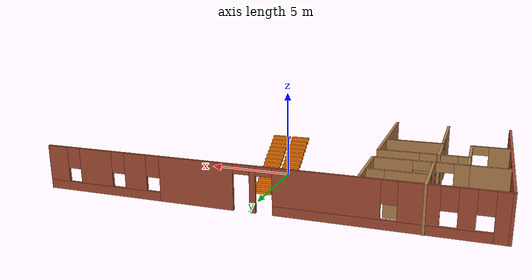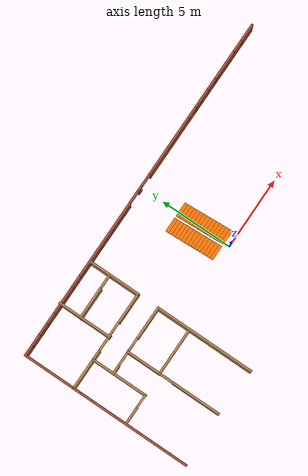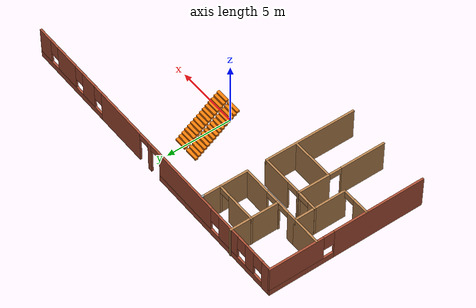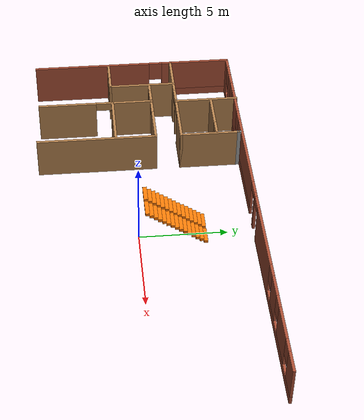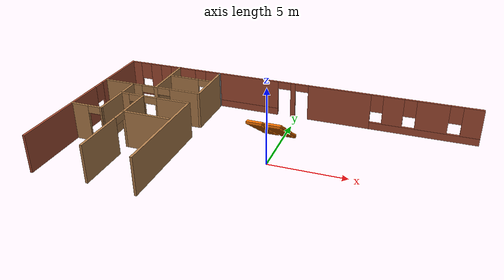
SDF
<sdf version="1.6">
 <model name="myhouse">
  <pose>-0.386417 0.578117 0 0 -0 0</pose>
  <link name="Stairs_1">
   <visual name="Stairs_1_Visual_0">
    <pose>0.612913 3.12759 0.083333 0 -0 0</pose>
    <geometry><box><size>1 0.233333 0.166667</size></box></geometry>
    <material>
     <script><uri>file://media/materials/scripts/gazebo.material</uri><name>Gazebo/Grey</name></script>
     <ambient>0.996078 0.47451 0.0196078 1</ambient>
    </material>
   </visual>
   <collision name="Stairs_1_Collision_0">
    <geometry><box><size>1 0.233333 0.166667</size></box></geometry>
    <pose>0.612913 3.12759 0.083333 0 -0 0</pose>
   </collision>
   <visual name="Stairs_1_Visual_1">
    <pose>0.612913 2.89426 0.25 0 -0 0</pose>
    <geometry><box><size>1 0.233333 0.166667</size></box></geometry>
    <material>
     <script><uri>file://media/materials/scripts/gazebo.material</uri><name>Gazebo/Grey</name></script>
     <ambient>0.996078 0.47451 0.0196078 1</ambient>
    </material>
   </visual>
   <collision name="Stairs_1_Collision_1">
    <geometry><box><size>1 0.233333 0.166667</size></box></geometry>
    <pose>0.612913 2.89426 0.25 0 -0 0</pose>
   </collision>
   <visual name="Stairs_1_Visual_2">
    <pose>0.612913 2.66093 0.416667 0 -0 0</pose>
    <geometry><box><size>1 0.233333 0.166667</size></box></geometry>
    <material>
     <script><uri>file://media/materials/scripts/gazebo.material</uri><name>Gazebo/Grey</name></script>
     <ambient>0.996078 0.47451 0.0196078 1</ambient>
    </material>
   </visual>
   <collision name="Stairs_1_Collision_2">
    <geometry><box><size>1 0.233333 0.166667</size></box></geometry>
    <pose>0.612913 2.66093 0.416667 0 -0 0</pose>
   </collision>
   <visual name="Stairs_1_Visual_3">
    <pose>0.612913 2.4276 0.583333 0 -0 0</pose>
    <geometry><box><size>1 0.233333 0.166667</size></box></geometry>
    <material>
     <script><uri>file://media/materials/scripts/gazebo.material</uri><name>Gazebo/Grey</name></script>
     <ambient>0.996078 0.47451 0.0196078 1</ambient>
    </material>
   </visual>
   <collision name="Stairs_1_Collision_3">
    <geometry><box><size>1 0.233333 0.166667</size></box></geometry>
    <pose>0.612913 2.4276 0.583333 0 -0 0</pose>
   </collision>
   <visual name="Stairs_1_Visual_4">
    <pose>0.612913 2.19426 0.75 0 -0 0</pose>
    <geometry><box><size>1 0.233333 0.166667</size></box></geometry>
    <material>
     <script><uri>file://media/materials/scripts/gazebo.material</uri><name>Gazebo/Grey</name></script>
     <ambient>0.996078 0.47451 0.0196078 1</ambient>
    </material>
   </visual>
   <collision name="Stairs_1_Collision_4">
    <geometry><box><size>1 0.233333 0.166667</size></box></geometry>
    <pose>0.612913 2.19426 0.75 0 -0 0</pose>
   </collision>
   <visual name="Stairs_1_Visual_5">
    <pose>0.612913 1.96093 0.916667 0 -0 0</pose>
    <geometry><box><size>1 0.233333 0.166667</size></box></geometry>
    <material>
     <script><uri>file://media/materials/scripts/gazebo.material</uri><name>Gazebo/Grey</name></script>
     <ambient>0.996078 0.47451 0.0196078 1</ambient>
    </material>
   </visual>
   <collision name="Stairs_1_Collision_5">
    <geometry><box><size>1 0.233333 0.166667</size></box></geometry>
    <pose>0.612913 1.96093 0.916667 0 -0 0</pose>
   </collision>
   <visual name="Stairs_1_Visual_6">
    <pose>0.612913 1.72759 1.08333 0 -0 0</pose>
    <geometry><box><size>1 0.233333 0.166667</size></box></geometry>
    <material>
     <script><uri>file://media/materials/scripts/gazebo.material</uri><name>Gazebo/Grey</name></script>
     <ambient>0.996078 0.47451 0.0196078 1</ambient>
    </material>
   </visual>
   <collision name="Stairs_1_Collision_6">
    <geometry><box><size>1 0.233333 0.166667</size></box></geometry>
    <pose>0.612913 1.72759 1.08333 0 -0 0</pose>
   </collision>
   <visual name="Stairs_1_Visual_7">
    <pose>0.612913 1.49426 1.25 0 -0 0</pose>
    <geometry><box><size>1 0.233333 0.166667</size></box></geometry>
    <material>
     <script><uri>file://media/materials/scripts/gazebo.material</uri><name>Gazebo/Grey</name></script>
     <ambient>0.996078 0.47451 0.0196078 1</ambient>
    </material>
   </visual>
   <collision name="Stairs_1_Collision_7">
    <geometry><box><size>1 0.233333 0.166667</size></box></geometry>
    <pose>0.612913 1.49426 1.25 0 -0 0</pose>
   </collision>
   <visual name="Stairs_1_Visual_8">
    <pose>0.612913 1.26093 1.41667 0 -0 0</pose>
    <geometry><box><size>1 0.233333 0.166667</size></box></geometry>
    <material>
     <script><uri>file://media/materials/scripts/gazebo.material</uri><name>Gazebo/Grey</name></script>
     <ambient>0.996078 0.47451 0.0196078 1</ambient>
    </material>
   </visual>
   <collision name="Stairs_1_Collision_8">
    <geometry><box><size>1 0.233333 0.166667</size></box></geometry>
    <pose>0.612913 1.26093 1.41667 0 -0 0</pose>
   </collision>
   <visual name="Stairs_1_Visual_9">
    <pose>0.612913 1.0276 1.58333 0 -0 0</pose>
    <geometry><box><size>1 0.233333 0.166667</size></box></geometry>
    <material>
     <script><uri>file://media/materials/scripts/gazebo.material</uri><name>Gazebo/Grey</name></script>
     <ambient>0.996078 0.47451 0.0196078 1</ambient>
    </material>
   </visual>
   <collision name="Stairs_1_Collision_9">
    <geometry><box><size>1 0.233333 0.166667</size></box></geometry>
    <pose>0.612913 1.0276 1.58333 0 -0 0</pose>
   </collision>
   <visual name="Stairs_1_Visual_10">
    <pose>0.612913 0.794262 1.75 0 -0 0</pose>
    <geometry><box><size>1 0.233333 0.166667</size></box></geometry>
    <material>
     <script><uri>file://media/materials/scripts/gazebo.material</uri><name>Gazebo/Grey</name></script>
     <ambient>0.996078 0.47451 0.0196078 1</ambient>
    </material>
   </visual>
   <collision name="Stairs_1_Collision_10">
    <geometry><box><size>1 0.233333 0.166667</size></box></geometry>
    <pose>0.612913 0.794262 1.75 0 -0 0</pose>
   </collision>
   <visual name="Stairs_1_Visual_11">
    <pose>0.612913 0.560929 1.91667 0 -0 0</pose>
    <geometry><box><size>1 0.233333 0.166667</size></box></geometry>
    <material>
     <script><uri>file://media/materials/scripts/gazebo.material</uri><name>Gazebo/Grey</name></script>
     <ambient>0.996078 0.47451 0.0196078 1</ambient>
    </material>
   </visual>
   <collision name="Stairs_1_Collision_11">
    <geometry><box><size>1 0.233333 0.166667</size></box></geometry>
    <pose>0.612913 0.560929 1.91667 0 -0 0</pose>
   </collision>
   <visual name="Stairs_1_Visual_12">
    <pose>0.612913 0.327595 2.08333 0 -0 0</pose>
    <geometry><box><size>1 0.233333 0.166667</size></box></geometry>
    <material>
     <script><uri>file://media/materials/scripts/gazebo.material</uri><name>Gazebo/Grey</name></script>
     <ambient>0.996078 0.47451 0.0196078 1</ambient>
    </material>
   </visual>
   <collision name="Stairs_1_Collision_12">
    <geometry><box><size>1 0.233333 0.166667</size></box></geometry>
    <pose>0.612913 0.327595 2.08333 0 -0 0</pose>
   </collision>
   <visual name="Stairs_1_Visual_13">
    <pose>0.612913 0.094262 2.25 0 -0 0</pose>
    <geometry><box><size>1 0.233333 0.166667</size></box></geometry>
    <material>
     <script><uri>file://media/materials/scripts/gazebo.material</uri><name>Gazebo/Grey</name></script>
     <ambient>0.996078 0.47451 0.0196078 1</ambient>
    </material>
   </visual>
   <collision name="Stairs_1_Collision_13">
    <geometry><box><size>1 0.233333 0.166667</size></box></geometry>
    <pose>0.612913 0.094262 2.25 0 -0 0</pose>
   </collision>
   <visual name="Stairs_1_Visual_14">
    <pose>0.612913 -0.139071 2.41667 0 -0 0</pose>
    <geometry><box><size>1 0.233333 0.166667</size></box></geometry>
    <material>
     <script><uri>file://media/materials/scripts/gazebo.material</uri><name>Gazebo/Grey</name></script>
     <ambient>0.996078 0.47451 0.0196078 1</ambient>
    </material>
   </visual>
   <collision name="Stairs_1_Collision_14">
    <geometry><box><size>1 0.233333 0.166667</size></box></geometry>
    <pose>0.612913 -0.139071 2.41667 0 -0 0</pose>
   </collision>
  </link>
  <link name="Stairs_2">
   <visual name="Stairs_2_Visual_0">
    <pose>-0.53356 3.12759 0.083333 0 -0 0</pose>
    <geometry><box><size>1 0.233333 0.166667</size></box></geometry>
    <material>
     <script><uri>file://media/materials/scripts/gazebo.material</uri><name>Gazebo/Grey</name></script>
     <ambient>0.996078 0.47451 0.0196078 1</ambient>
    </material>
   </visual>
   <collision name="Stairs_2_Collision_0">
    <geometry><box><size>1 0.233333 0.166667</size></box></geometry>
    <pose>-0.53356 3.12759 0.083333 0 -0 0</pose>
   </collision>
   <visual name="Stairs_2_Visual_1">
    <pose>-0.53356 2.89426 0.25 0 -0 0</pose>
    <geometry><box><size>1 0.233333 0.166667</size></box></geometry>
    <material>
     <script><uri>file://media/materials/scripts/gazebo.material</uri><name>Gazebo/Grey</name></script>
     <ambient>0.996078 0.47451 0.0196078 1</ambient>
    </material>
   </visual>
   <collision name="Stairs_2_Collision_1">
    <geometry><box><size>1 0.233333 0.166667</size></box></geometry>
    <pose>-0.53356 2.89426 0.25 0 -0 0</pose>
   </collision>
   <visual name="Stairs_2_Visual_2">
    <pose>-0.53356 2.66093 0.416667 0 -0 0</pose>
    <geometry><box><size>1 0.233333 0.166667</size></box></geometry>
    <material>
     <script><uri>file://media/materials/scripts/gazebo.material</uri><name>Gazebo/Grey</name></script>
     <ambient>0.996078 0.47451 0.0196078 1</ambient>
    </material>
   </visual>
   <collision name="Stairs_2_Collision_2">
    <geometry><box><size>1 0.233333 0.166667</size></box></geometry>
    <pose>-0.53356 2.66093 0.416667 0 -0 0</pose>
   </collision>
   <visual name="Stairs_2_Visual_3">
    <pose>-0.53356 2.4276 0.583333 0 -0 0</pose>
    <geometry><box><size>1 0.233333 0.166667</size></box></geometry>
    <material>
     <script><uri>file://media/materials/scripts/gazebo.material</uri><name>Gazebo/Grey</name></script>
     <ambient>0.996078 0.47451 0.0196078 1</ambient>
    </material>
   </visual>
   <collision name="Stairs_2_Collision_3">
    <geometry><box><size>1 0.233333 0.166667</size></box></geometry>
    <pose>-0.53356 2.4276 0.583333 0 -0 0</pose>
   </collision>
   <visual name="Stairs_2_Visual_4">
    <pose>-0.53356 2.19426 0.75 0 -0 0</pose>
    <geometry><box><size>1 0.233333 0.166667</size></box></geometry>
    <material>
     <script><uri>file://media/materials/scripts/gazebo.material</uri><name>Gazebo/Grey</name></script>
     <ambient>0.996078 0.47451 0.0196078 1</ambient>
    </material>
   </visual>
   <collision name="Stairs_2_Collision_4">
    <geometry><box><size>1 0.233333 0.166667</size></box></geometry>
    <pose>-0.53356 2.19426 0.75 0 -0 0</pose>
   </collision>
   <visual name="Stairs_2_Visual_5">
    <pose>-0.53356 1.96093 0.916667 0 -0 0</pose>
    <geometry><box><size>1 0.233333 0.166667</size></box></geometry>
    <material>
     <script><uri>file://media/materials/scripts/gazebo.material</uri><name>Gazebo/Grey</name></script>
     <ambient>0.996078 0.47451 0.0196078 1</ambient>
    </material>
   </visual>
   <collision name="Stairs_2_Collision_5">
    <geometry><box><size>1 0.233333 0.166667</size></box></geometry>
    <pose>-0.53356 1.96093 0.916667 0 -0 0</pose>
   </collision>
   <visual name="Stairs_2_Visual_6">
    <pose>-0.53356 1.72759 1.08333 0 -0 0</pose>
    <geometry><box><size>1 0.233333 0.166667</size></box></geometry>
    <material>
     <script><uri>file://media/materials/scripts/gazebo.material</uri><name>Gazebo/Grey</name></script>
     <ambient>0.996078 0.47451 0.0196078 1</ambient>
    </material>
   </visual>
   <collision name="Stairs_2_Collision_6">
    <geometry><box><size>1 0.233333 0.166667</size></box></geometry>
    <pose>-0.53356 1.72759 1.08333 0 -0 0</pose>
   </collision>
   <visual name="Stairs_2_Visual_7">
    <pose>-0.53356 1.49426 1.25 0 -0 0</pose>
    <geometry><box><size>1 0.233333 0.166667</size></box></geometry>
    <material>
     <script><uri>file://media/materials/scripts/gazebo.material</uri><name>Gazebo/Grey</name></script>
     <ambient>0.996078 0.47451 0.0196078 1</ambient>
    </material>
   </visual>
   <collision name="Stairs_2_Collision_7">
    <geometry><box><size>1 0.233333 0.166667</size></box></geometry>
    <pose>-0.53356 1.49426 1.25 0 -0 0</pose>
   </collision>
   <visual name="Stairs_2_Visual_8">
    <pose>-0.53356 1.26093 1.41667 0 -0 0</pose>
    <geometry><box><size>1 0.233333 0.166667</size></box></geometry>
    <material>
     <script><uri>file://media/materials/scripts/gazebo.material</uri><name>Gazebo/Grey</name></script>
     <ambient>0.996078 0.47451 0.0196078 1</ambient>
    </material>
   </visual>
   <collision name="Stairs_2_Collision_8">
    <geometry><box><size>1 0.233333 0.166667</size></box></geometry>
    <pose>-0.53356 1.26093 1.41667 0 -0 0</pose>
   </collision>
   <visual name="Stairs_2_Visual_9">
    <pose>-0.53356 1.0276 1.58333 0 -0 0</pose>
    <geometry><box><size>1 0.233333 0.166667</size></box></geometry>
    <material>
     <script><uri>file://media/materials/scripts/gazebo.material</uri><name>Gazebo/Grey</name></script>
     <ambient>0.996078 0.47451 0.0196078 1</ambient>
    </material>
   </visual>
   <collision name="Stairs_2_Collision_9">
    <geometry><box><size>1 0.233333 0.166667</size></box></geometry>
    <pose>-0.53356 1.0276 1.58333 0 -0 0</pose>
   </collision>
   <visual name="Stairs_2_Visual_10">
    <pose>-0.53356 0.794262 1.75 0 -0 0</pose>
    <geometry><box><size>1 0.233333 0.166667</size></box></geometry>
    <material>
     <script><uri>file://media/materials/scripts/gazebo.material</uri><name>Gazebo/Grey</name></script>
     <ambient>0.996078 0.47451 0.0196078 1</ambient>
    </material>
   </visual>
   <collision name="Stairs_2_Collision_10">
    <geometry><box><size>1 0.233333 0.166667</size></box></geometry>
    <pose>-0.53356 0.794262 1.75 0 -0 0</pose>
   </collision>
   <visual name="Stairs_2_Visual_11">
    <pose>-0.53356 0.560929 1.91667 0 -0 0</pose>
    <geometry><box><size>1 0.233333 0.166667</size></box></geometry>
    <material>
     <script><uri>file://media/materials/scripts/gazebo.material</uri><name>Gazebo/Grey</name></script>
     <ambient>0.996078 0.47451 0.0196078 1</ambient>
    </material>
   </visual>
   <collision name="Stairs_2_Collision_11">
    <geometry><box><size>1 0.233333 0.166667</size></box></geometry>
    <pose>-0.53356 0.560929 1.91667 0 -0 0</pose>
   </collision>
   <visual name="Stairs_2_Visual_12">
    <pose>-0.53356 0.327595 2.08333 0 -0 0</pose>
    <geometry><box><size>1 0.233333 0.166667</size></box></geometry>
    <material>
     <script><uri>file://media/materials/scripts/gazebo.material</uri><name>Gazebo/Grey</name></script>
     <ambient>0.996078 0.47451 0.0196078 1</ambient>
    </material>
   </visual>
   <collision name="Stairs_2_Collision_12">
    <geometry><box><size>1 0.233333 0.166667</size></box></geometry>
    <pose>-0.53356 0.327595 2.08333 0 -0 0</pose>
   </collision>
   <visual name="Stairs_2_Visual_13">
    <pose>-0.53356 0.094262 2.25 0 -0 0</pose>
    <geometry><box><size>1 0.233333 0.166667</size></box></geometry>
    <material>
     <script><uri>file://media/materials/scripts/gazebo.material</uri><name>Gazebo/Grey</name></script>
     <ambient>0.996078 0.47451 0.0196078 1</ambient>
    </material>
   </visual>
   <collision name="Stairs_2_Collision_13">
    <geometry><box><size>1 0.233333 0.166667</size></box></geometry>
    <pose>-0.53356 0.094262 2.25 0 -0 0</pose>
   </collision>
   <visual name="Stairs_2_Visual_14">
    <pose>-0.53356 -0.139071 2.41667 0 -0 0</pose>
    <geometry><box><size>1 0.233333 0.166667</size></box></geometry>
    <material>
     <script><uri>file://media/materials/scripts/gazebo.material</uri><name>Gazebo/Grey</name></script>
     <ambient>0.996078 0.47451 0.0196078 1</ambient>
    </material>
   </visual>
   <collision name="Stairs_2_Collision_14">
    <geometry><box><size>1 0.233333 0.166667</size></box></geometry>
    <pose>-0.53356 -0.139071 2.41667 0 -0 0</pose>
   </collision>
  </link>
  <link name="Wall_10">
   <pose>-12.3 -0.005752 0 0 -0 1.5708</pose>
   <visual name="Wall_10_Visual_0">
    <pose>-2.48016 0 1.25 0 -0 0</pose>
    <geometry><box><size>7.03967 0.15 2.5</size></box></geometry>
    <material>
     <script><uri>file://media/materials/scripts/gazebo.material</uri><name>Gazebo/Bricks</name></script>
     <ambient>0.435294 0.796078 0.67451 1</ambient>
    </material>
   </visual>
   <collision name="Wall_10_Collision_0">
    <geometry><box><size>7.03967 0.15 2.5</size></box></geometry>
    <pose>-2.48016 0 1.25 0 -0 0</pose>
   </collision>
   <visual name="Wall_10_Visual_1">
    <pose>3.51984 0 0.25 0 -0 0</pose>
    <geometry><box><size>4.96033 0.15 0.5</size></box></geometry>
    <material>
     <script><uri>file://media/materials/scripts/gazebo.material</uri><name>Gazebo/Bricks</name></script>
     <ambient>0.435294 0.796078 0.67451 1</ambient>
    </material>
   </visual>
   <collision name="Wall_10_Collision_1">
    <geometry><box><size>4.96033 0.15 0.5</size></box></geometry>
    <pose>3.51984 0 0.25 0 -0 0</pose>
   </collision>
   <visual name="Wall_10_Visual_2">
    <pose>3.91984 0 1.5 0 -0 0</pose>
    <geometry><box><size>4.16033 0.15 2</size></box></geometry>
    <material>
     <script><uri>file://media/materials/scripts/gazebo.material</uri><name>Gazebo/Bricks</name></script>
     <ambient>0.435294 0.796078 0.67451 1</ambient>
    </material>
   </visual>
   <collision name="Wall_10_Collision_2">
    <geometry><box><size>4.16033 0.15 2</size></box></geometry>
    <pose>3.91984 0 1.5 0 -0 0</pose>
   </collision>
   <visual name="Wall_10_Visual_3">
    <pose>1.43967 0 1.9 0 -0 0</pose>
    <geometry><box><size>0.8 0.15 1.2</size></box></geometry>
    <material>
     <script><uri>file://media/materials/scripts/gazebo.material</uri><name>Gazebo/Bricks</name></script>
     <ambient>0.435294 0.796078 0.67451 1</ambient>
    </material>
   </visual>
   <collision name="Wall_10_Collision_3">
    <geometry><box><size>0.8 0.15 1.2</size></box></geometry>
    <pose>1.43967 0 1.9 0 -0 0</pose>
   </collision>
  </link>
  <link name="Wall_40">
   <collision name="Wall_40_Collision">
    <geometry><box><size>2.25 0.15 2.5</size></box></geometry>
    <pose>0 0 1.25 0 -0 0</pose>
   </collision>
   <visual name="Wall_40_Visual">
    <pose>0 0 1.25 0 -0 0</pose>
    <geometry><box><size>2.25 0.15 2.5</size></box></geometry>
    <material>
     <script><uri>file://media/materials/scripts/gazebo.material</uri><name>Gazebo/Wood</name></script>
     <ambient>1 1 1 1</ambient>
    </material>
   </visual>
   <pose>-11.2299 2.35915 0 0 -0 0</pose>
  </link>
  <link name="Wall_41">
   <collision name="Wall_41_Collision">
    <geometry><box><size>4 0.15 2.5</size></box></geometry>
    <pose>0 0 1.25 0 -0 0</pose>
   </collision>
   <visual name="Wall_41_Visual">
    <pose>0 0 1.25 0 -0 0</pose>
    <geometry><box><size>4 0.15 2.5</size></box></geometry>
    <material>
     <script><uri>file://media/materials/scripts/gazebo.material</uri><name>Gazebo/Wood</name></script>
     <ambient>1 1 1 1</ambient>
    </material>
   </visual>
   <pose>-10.1799 0.434146 0 0 0 -1.5708</pose>
  </link>
  <link name="Wall_42">
   <pose>-11.2299 -1.49085 0 0 -0 3.14159</pose>
   <visual name="Wall_42_Visual_0">
    <pose>-1.0771 0 1.25 0 -0 0</pose>
    <geometry><box><size>0.0958 0.15 2.5</size></box></geometry>
    <material>
     <script><uri>file://media/materials/scripts/gazebo.material</uri><name>Gazebo/Wood</name></script>
     <ambient>1 1 1 1</ambient>
    </material>
   </visual>
   <collision name="Wall_42_Collision_0">
    <geometry><box><size>0.0958 0.15 2.5</size></box></geometry>
    <pose>-1.0771 0 1.25 0 -0 0</pose>
   </collision>
   <visual name="Wall_42_Visual_1">
    <pose>0.4979 0 1.25 0 -0 0</pose>
    <geometry><box><size>1.2542 0.15 2.5</size></box></geometry>
    <material>
     <script><uri>file://media/materials/scripts/gazebo.material</uri><name>Gazebo/Wood</name></script>
     <ambient>1 1 1 1</ambient>
    </material>
   </visual>
   <collision name="Wall_42_Collision_1">
    <geometry><box><size>1.2542 0.15 2.5</size></box></geometry>
    <pose>0.4979 0 1.25 0 -0 0</pose>
   </collision>
   <visual name="Wall_42_Visual_2">
    <pose>-0.5792 0 2.25 0 -0 0</pose>
    <geometry><box><size>0.9 0.15 0.5</size></box></geometry>
    <material>
     <script><uri>file://media/materials/scripts/gazebo.material</uri><name>Gazebo/Wood</name></script>
     <ambient>1 1 1 1</ambient>
    </material>
   </visual>
   <collision name="Wall_42_Collision_2">
    <geometry><box><size>0.9 0.15 0.5</size></box></geometry>
    <pose>-0.5792 0 2.25 0 -0 0</pose>
   </collision>
  </link>
  <link name="Wall_44">
   <pose>-7.75489 2.35915 0 0 -0 0</pose>
   <visual name="Wall_44_Visual_0">
    <pose>-2.11836 0 1.25 0 -0 0</pose>
    <geometry><box><size>0.763284 0.15 2.5</size></box></geometry>
    <material>
     <script><uri>file://media/materials/scripts/gazebo.material</uri><name>Gazebo/Wood</name></script>
     <ambient>1 1 1 1</ambient>
    </material>
   </visual>
   <collision name="Wall_44_Collision_0">
    <geometry><box><size>0.763284 0.15 2.5</size></box></geometry>
    <pose>-2.11836 0 1.25 0 -0 0</pose>
   </collision>
   <visual name="Wall_44_Visual_1">
    <pose>-0.703422 0 1.25 0 -0 0</pose>
    <geometry><box><size>0.266588 0.15 2.5</size></box></geometry>
    <material>
     <script><uri>file://media/materials/scripts/gazebo.material</uri><name>Gazebo/Wood</name></script>
     <ambient>1 1 1 1</ambient>
    </material>
   </visual>
   <collision name="Wall_44_Collision_1">
    <geometry><box><size>0.266588 0.15 2.5</size></box></geometry>
    <pose>-0.703422 0 1.25 0 -0 0</pose>
   </collision>
   <visual name="Wall_44_Visual_2">
    <pose>1.41494 0 1.25 0 -0 0</pose>
    <geometry><box><size>2.17013 0.15 2.5</size></box></geometry>
    <material>
     <script><uri>file://media/materials/scripts/gazebo.material</uri><name>Gazebo/Wood</name></script>
     <ambient>1 1 1 1</ambient>
    </material>
   </visual>
   <collision name="Wall_44_Collision_2">
    <geometry><box><size>2.17013 0.15 2.5</size></box></geometry>
    <pose>1.41494 0 1.25 0 -0 0</pose>
   </collision>
   <visual name="Wall_44_Visual_3">
    <pose>-1.28672 0 2.25 0 -0 0</pose>
    <geometry><box><size>0.9 0.15 0.5</size></box></geometry>
    <material>
     <script><uri>file://media/materials/scripts/gazebo.material</uri><name>Gazebo/Wood</name></script>
     <ambient>1 1 1 1</ambient>
    </material>
   </visual>
   <collision name="Wall_44_Collision_3">
    <geometry><box><size>0.9 0.15 0.5</size></box></geometry>
    <pose>-1.28672 0 2.25 0 -0 0</pose>
   </collision>
   <visual name="Wall_44_Visual_4">
    <pose>-0.120128 0 2.25 0 -0 0</pose>
    <geometry><box><size>0.9 0.15 0.5</size></box></geometry>
    <material>
     <script><uri>file://media/materials/scripts/gazebo.material</uri><name>Gazebo/Wood</name></script>
     <ambient>1 1 1 1</ambient>
    </material>
   </visual>
   <collision name="Wall_44_Collision_4">
    <geometry><box><size>0.9 0.15 0.5</size></box></geometry>
    <pose>-0.120128 0 2.25 0 -0 0</pose>
   </collision>
  </link>
  <link name="Wall_45">
   <collision name="Wall_45_Collision">
    <geometry><box><size>3.5 0.15 2.5</size></box></geometry>
    <pose>0 0 1.25 0 -0 0</pose>
   </collision>
   <visual name="Wall_45_Visual">
    <pose>0 0 1.25 0 -0 0</pose>
    <geometry><box><size>3.5 0.15 2.5</size></box></geometry>
    <material>
     <script><uri>file://media/materials/scripts/gazebo.material</uri><name>Gazebo/Wood</name></script>
     <ambient>1 1 1 1</ambient>
    </material>
   </visual>
   <pose>-5.32989 4.03414 0 0 -0 1.5708</pose>
  </link>
  <link name="Wall_46">
   <collision name="Wall_46_Collision">
    <geometry><box><size>0.25 0.15 2.5</size></box></geometry>
    <pose>0 0 1.25 0 -0 0</pose>
   </collision>
   <visual name="Wall_46_Visual">
    <pose>0 0 1.25 0 -0 0</pose>
    <geometry><box><size>0.25 0.15 2.5</size></box></geometry>
    <material>
     <script><uri>file://media/materials/scripts/gazebo.material</uri><name>Gazebo/Grey</name></script>
     <ambient>1 1 1 1</ambient>
    </material>
   </visual>
   <pose>-5.32989 5.75915 0 0 -0 1.5708</pose>
  </link>
  <link name="Wall_52">
   <collision name="Wall_52_Collision">
    <geometry><box><size>3.75 0.15 2.5</size></box></geometry>
    <pose>0 0 1.25 0 -0 0</pose>
   </collision>
   <visual name="Wall_52_Visual">
    <pose>0 0 1.25 0 -0 0</pose>
    <geometry><box><size>3.75 0.15 2.5</size></box></geometry>
    <material>
     <script><uri>file://media/materials/scripts/gazebo.material</uri><name>Gazebo/Wood</name></script>
     <ambient>1 1 1 1</ambient>
    </material>
   </visual>
   <pose>-8.47842 4.17926 0 0 -0 1.5708</pose>
  </link>
  <link name="Wall_54">
   <pose>-6.94853 4.45096 0 0 -0 0</pose>
   <visual name="Wall_54_Visual_0">
    <pose>-0.495061 0 1.25 0 -0 0</pose>
    <geometry><box><size>2.25988 0.15 2.5</size></box></geometry>
    <material>
     <script><uri>file://media/materials/scripts/gazebo.material</uri><name>Gazebo/Wood</name></script>
     <ambient>1 1 1 1</ambient>
    </material>
   </visual>
   <collision name="Wall_54_Collision_0">
    <geometry><box><size>2.25988 0.15 2.5</size></box></geometry>
    <pose>-0.495061 0 1.25 0 -0 0</pose>
   </collision>
   <visual name="Wall_54_Visual_1">
    <pose>1.57994 0 1.25 0 -0 0</pose>
    <geometry><box><size>0.090122 0.15 2.5</size></box></geometry>
    <material>
     <script><uri>file://media/materials/scripts/gazebo.material</uri><name>Gazebo/Wood</name></script>
     <ambient>1 1 1 1</ambient>
    </material>
   </visual>
   <collision name="Wall_54_Collision_1">
    <geometry><box><size>0.090122 0.15 2.5</size></box></geometry>
    <pose>1.57994 0 1.25 0 -0 0</pose>
   </collision>
   <visual name="Wall_54_Visual_2">
    <pose>1.08488 0 2.25 0 -0 0</pose>
    <geometry><box><size>0.9 0.15 0.5</size></box></geometry>
    <material>
     <script><uri>file://media/materials/scripts/gazebo.material</uri><name>Gazebo/Wood</name></script>
     <ambient>1 1 1 1</ambient>
    </material>
   </visual>
   <collision name="Wall_54_Collision_2">
    <geometry><box><size>0.9 0.15 0.5</size></box></geometry>
    <pose>1.08488 0 2.25 0 -0 0</pose>
   </collision>
  </link>
  <link name="Wall_56">
   <pose>-7.76307 0.870741 0 0 -0 0</pose>
   <visual name="Wall_56_Visual_0">
    <pose>-2.16455 0 1.25 0 -0 0</pose>
    <geometry><box><size>0.670906 0.15 2.5</size></box></geometry>
    <material>
     <script><uri>file://media/materials/scripts/gazebo.material</uri><name>Gazebo/Wood</name></script>
     <ambient>1 1 1 1</ambient>
    </material>
   </visual>
   <collision name="Wall_56_Collision_0">
    <geometry><box><size>0.670906 0.15 2.5</size></box></geometry>
    <pose>-2.16455 0 1.25 0 -0 0</pose>
   </collision>
   <visual name="Wall_56_Visual_1">
    <pose>-0.825971 0 1.25 0 -0 0</pose>
    <geometry><box><size>0.206247 0.15 2.5</size></box></geometry>
    <material>
     <script><uri>file://media/materials/scripts/gazebo.material</uri><name>Gazebo/Wood</name></script>
     <ambient>1 1 1 1</ambient>
    </material>
   </visual>
   <collision name="Wall_56_Collision_1">
    <geometry><box><size>0.206247 0.15 2.5</size></box></geometry>
    <pose>-0.825971 0 1.25 0 -0 0</pose>
   </collision>
   <visual name="Wall_56_Visual_2">
    <pose>1.33858 0 1.25 0 -0 0</pose>
    <geometry><box><size>2.32285 0.15 2.5</size></box></geometry>
    <material>
     <script><uri>file://media/materials/scripts/gazebo.material</uri><name>Gazebo/Wood</name></script>
     <ambient>1 1 1 1</ambient>
    </material>
   </visual>
   <collision name="Wall_56_Collision_2">
    <geometry><box><size>2.32285 0.15 2.5</size></box></geometry>
    <pose>1.33858 0 1.25 0 -0 0</pose>
   </collision>
   <visual name="Wall_56_Visual_3">
    <pose>-1.37909 0 2.25 0 -0 0</pose>
    <geometry><box><size>0.9 0.15 0.5</size></box></geometry>
    <material>
     <script><uri>file://media/materials/scripts/gazebo.material</uri><name>Gazebo/Wood</name></script>
     <ambient>1 1 1 1</ambient>
    </material>
   </visual>
   <collision name="Wall_56_Collision_3">
    <geometry><box><size>0.9 0.15 0.5</size></box></geometry>
    <pose>-1.37909 0 2.25 0 -0 0</pose>
   </collision>
   <visual name="Wall_56_Visual_4">
    <pose>-0.272847 0 2.25 0 -0 0</pose>
    <geometry><box><size>0.9 0.15 0.5</size></box></geometry>
    <material>
     <script><uri>file://media/materials/scripts/gazebo.material</uri><name>Gazebo/Wood</name></script>
     <ambient>1 1 1 1</ambient>
    </material>
   </visual>
   <collision name="Wall_56_Collision_4">
    <geometry><box><size>0.9 0.15 0.5</size></box></geometry>
    <pose>-0.272847 0 2.25 0 -0 0</pose>
   </collision>
  </link>
  <link name="Wall_57">
   <collision name="Wall_57_Collision">
    <geometry><box><size>7 0.15 2.5</size></box></geometry>
    <pose>0 0 1.25 0 -0 0</pose>
   </collision>
   <visual name="Wall_57_Visual">
    <pose>0 0 1.25 0 -0 0</pose>
    <geometry><box><size>7 0.15 2.5</size></box></geometry>
    <material>
     <script><uri>file://media/materials/scripts/gazebo.material</uri><name>Gazebo/Wood</name></script>
     <ambient>1 1 1 1</ambient>
    </material>
   </visual>
   <pose>-5.33807 -2.55426 0 0 0 -1.5708</pose>
  </link>
  <link name="Wall_59">
   <collision name="Wall_59_Collision">
    <geometry><box><size>2.5 0.15 2.5</size></box></geometry>
    <pose>0 0 1.25 0 -0 0</pose>
   </collision>
   <visual name="Wall_59_Visual">
    <pose>0 0 1.25 0 -0 0</pose>
    <geometry><box><size>2.5 0.15 2.5</size></box></geometry>
    <material>
     <script><uri>file://media/materials/scripts/gazebo.material</uri><name>Gazebo/Wood</name></script>
     <ambient>1 1 1 1</ambient>
    </material>
   </visual>
   <pose>-8.5991 -0.284145 0 0 0 -1.5708</pose>
  </link>
  <link name="Wall_60">
   <collision name="Wall_60_Collision">
    <geometry><box><size>3.25 0.15 2.5</size></box></geometry>
    <pose>0 0 1.25 0 -0 0</pose>
   </collision>
   <visual name="Wall_60_Visual">
    <pose>0 0 1.25 0 -0 0</pose>
    <geometry><box><size>3.25 0.15 2.5</size></box></geometry>
    <material>
     <script><uri>file://media/materials/scripts/gazebo.material</uri><name>Gazebo/Wood</name></script>
     <ambient>1 1 1 1</ambient>
    </material>
   </visual>
   <pose>-7.0491 -1.45914 0 0 -0 0</pose>
  </link>
  <link name="Wall_62">
   <pose>-8.5991 -3.63415 0 0 0 -1.5708</pose>
   <visual name="Wall_62_Visual_0">
    <pose>-2.17438 0 1.25 0 -0 0</pose>
    <geometry><box><size>0.151241 0.15 2.5</size></box></geometry>
    <material>
     <script><uri>file://media/materials/scripts/gazebo.material</uri><name>Gazebo/Wood</name></script>
     <ambient>1 1 1 1</ambient>
    </material>
   </visual>
   <collision name="Wall_62_Collision_0">
    <geometry><box><size>0.151241 0.15 2.5</size></box></geometry>
    <pose>-2.17438 0 1.25 0 -0 0</pose>
   </collision>
   <visual name="Wall_62_Visual_1">
    <pose>0.52562 0 1.25 0 -0 0</pose>
    <geometry><box><size>3.44876 0.15 2.5</size></box></geometry>
    <material>
     <script><uri>file://media/materials/scripts/gazebo.material</uri><name>Gazebo/Wood</name></script>
     <ambient>1 1 1 1</ambient>
    </material>
   </visual>
   <collision name="Wall_62_Collision_1">
    <geometry><box><size>3.44876 0.15 2.5</size></box></geometry>
    <pose>0.52562 0 1.25 0 -0 0</pose>
   </collision>
   <visual name="Wall_62_Visual_2">
    <pose>-1.64876 0 2.25 0 -0 0</pose>
    <geometry><box><size>0.9 0.15 0.5</size></box></geometry>
    <material>
     <script><uri>file://media/materials/scripts/gazebo.material</uri><name>Gazebo/Wood</name></script>
     <ambient>1 1 1 1</ambient>
    </material>
   </visual>
   <collision name="Wall_62_Collision_2">
    <geometry><box><size>0.9 0.15 0.5</size></box></geometry>
    <pose>-1.64876 0 2.25 0 -0 0</pose>
   </collision>
  </link>
  <link name="Wall_7">
   <pose>0 5.91925 0 0 -0 0</pose>
   <visual name="Wall_7_Visual_0">
    <pose>-11.9743 0 1.25 0 -0 0</pose>
    <geometry><box><size>0.80136 0.15 2.5</size></box></geometry>
    <material>
     <script><uri>file://media/materials/scripts/gazebo.material</uri><name>Gazebo/Bricks</name></script>
     <ambient>0.435294 0.796078 0.67451 1</ambient>
    </material>
   </visual>
   <collision name="Wall_7_Collision_0">
    <geometry><box><size>0.80136 0.15 2.5</size></box></geometry>
    <pose>-11.9743 0 1.25 0 -0 0</pose>
   </collision>
   <visual name="Wall_7_Visual_1">
    <pose>0.05979 0 1.25 0 -0 0</pose>
    <geometry><box><size>0.326928 0.15 2.5</size></box></geometry>
    <material>
     <script><uri>file://media/materials/scripts/gazebo.material</uri><name>Gazebo/Bricks</name></script>
     <ambient>0.435294 0.796078 0.67451 1</ambient>
    </material>
   </visual>
   <collision name="Wall_7_Collision_1">
    <geometry><box><size>0.326928 0.15 2.5</size></box></geometry>
    <pose>0.05979 0 1.25 0 -0 0</pose>
   </collision>
   <visual name="Wall_7_Visual_2">
    <pose>3.24262 0 1.25 0 -0 0</pose>
    <geometry><box><size>4.23873 0.15 2.5</size></box></geometry>
    <material>
     <script><uri>file://media/materials/scripts/gazebo.material</uri><name>Gazebo/Bricks</name></script>
     <ambient>0.435294 0.796078 0.67451 1</ambient>
    </material>
   </visual>
   <collision name="Wall_7_Collision_2">
    <geometry><box><size>4.23873 0.15 2.5</size></box></geometry>
    <pose>3.24262 0 1.25 0 -0 0</pose>
   </collision>
   <visual name="Wall_7_Visual_3">
    <pose>-6.28866 0 0.25 0 -0 0</pose>
    <geometry><box><size>10.57 0.15 0.5</size></box></geometry>
    <material>
     <script><uri>file://media/materials/scripts/gazebo.material</uri><name>Gazebo/Bricks</name></script>
     <ambient>0.435294 0.796078 0.67451 1</ambient>
    </material>
   </visual>
   <collision name="Wall_7_Collision_3">
    <geometry><box><size>10.57 0.15 0.5</size></box></geometry>
    <pose>-6.28866 0 0.25 0 -0 0</pose>
   </collision>
   <visual name="Wall_7_Visual_4">
    <pose>8.86849 0 0.25 0 -0 0</pose>
    <geometry><box><size>7.01301 0.15 0.5</size></box></geometry>
    <material>
     <script><uri>file://media/materials/scripts/gazebo.material</uri><name>Gazebo/Bricks</name></script>
     <ambient>0.435294 0.796078 0.67451 1</ambient>
    </material>
   </visual>
   <collision name="Wall_7_Collision_4">
    <geometry><box><size>7.01301 0.15 0.5</size></box></geometry>
    <pose>8.86849 0 0.25 0 -0 0</pose>
   </collision>
   <visual name="Wall_7_Visual_5">
    <pose>-10.3691 0 1.5 0 -0 0</pose>
    <geometry><box><size>0.809086 0.15 2</size></box></geometry>
    <material>
     <script><uri>file://media/materials/scripts/gazebo.material</uri><name>Gazebo/Bricks</name></script>
     <ambient>0.435294 0.796078 0.67451 1</ambient>
    </material>
   </visual>
   <collision name="Wall_7_Collision_5">
    <geometry><box><size>0.809086 0.15 2</size></box></geometry>
    <pose>-10.3691 0 1.5 0 -0 0</pose>
   </collision>
   <visual name="Wall_7_Visual_6">
    <pose>-8.19683 0 1.5 0 -0 0</pose>
    <geometry><box><size>1.93545 0.15 2</size></box></geometry>
    <material>
     <script><uri>file://media/materials/scripts/gazebo.material</uri><name>Gazebo/Bricks</name></script>
     <ambient>0.435294 0.796078 0.67451 1</ambient>
    </material>
   </visual>
   <collision name="Wall_7_Collision_6">
    <geometry><box><size>1.93545 0.15 2</size></box></geometry>
    <pose>-8.19683 0 1.5 0 -0 0</pose>
   </collision>
   <visual name="Wall_7_Visual_7">
    <pose>-3.71639 0 1.5 0 -0 0</pose>
    <geometry><box><size>5.42543 0.15 2</size></box></geometry>
    <material>
     <script><uri>file://media/materials/scripts/gazebo.material</uri><name>Gazebo/Bricks</name></script>
     <ambient>0.435294 0.796078 0.67451 1</ambient>
    </material>
   </visual>
   <collision name="Wall_7_Collision_7">
    <geometry><box><size>5.42543 0.15 2</size></box></geometry>
    <pose>-3.71639 0 1.5 0 -0 0</pose>
   </collision>
   <visual name="Wall_7_Visual_8">
    <pose>-3.71639 0 1.5 0 -0 0</pose>
    <geometry><box><size>5.42543 0.15 2</size></box></geometry>
    <material>
     <script><uri>file://media/materials/scripts/gazebo.material</uri><name>Gazebo/Bricks</name></script>
     <ambient>0.435294 0.796078 0.67451 1</ambient>
    </material>
   </visual>
   <collision name="Wall_7_Collision_8">
    <geometry><box><size>5.42543 0.15 2</size></box></geometry>
    <pose>-3.71639 0 1.5 0 -0 0</pose>
   </collision>
   <visual name="Wall_7_Visual_9">
    <pose>6.82801 0 1.5 0 -0 0</pose>
    <geometry><box><size>1.33204 0.15 2</size></box></geometry>
    <material>
     <script><uri>file://media/materials/scripts/gazebo.material</uri><name>Gazebo/Bricks</name></script>
     <ambient>0.435294 0.796078 0.67451 1</ambient>
    </material>
   </visual>
   <collision name="Wall_7_Collision_9">
    <geometry><box><size>1.33204 0.15 2</size></box></geometry>
    <pose>6.82801 0 1.5 0 -0 0</pose>
   </collision>
   <visual name="Wall_7_Visual_10">
    <pose>9.31203 0 1.5 0 -0 0</pose>
    <geometry><box><size>2.03601 0.15 2</size></box></geometry>
    <material>
     <script><uri>file://media/materials/scripts/gazebo.material</uri><name>Gazebo/Bricks</name></script>
     <ambient>0.435294 0.796078 0.67451 1</ambient>
    </material>
   </visual>
   <collision name="Wall_7_Collision_10">
    <geometry><box><size>2.03601 0.15 2</size></box></geometry>
    <pose>9.31203 0 1.5 0 -0 0</pose>
   </collision>
   <visual name="Wall_7_Visual_11">
    <pose>11.7525 0 1.5 0 -0 0</pose>
    <geometry><box><size>1.24496 0.15 2</size></box></geometry>
    <material>
     <script><uri>file://media/materials/scripts/gazebo.material</uri><name>Gazebo/Bricks</name></script>
     <ambient>0.435294 0.796078 0.67451 1</ambient>
    </material>
   </visual>
   <collision name="Wall_7_Collision_11">
    <geometry><box><size>1.24496 0.15 2</size></box></geometry>
    <pose>11.7525 0 1.5 0 -0 0</pose>
   </collision>
   <visual name="Wall_7_Visual_12">
    <pose>-11.1736 0 1.9 0 -0 0</pose>
    <geometry><box><size>0.8 0.15 1.2</size></box></geometry>
    <material>
     <script><uri>file://media/materials/scripts/gazebo.material</uri><name>Gazebo/Bricks</name></script>
     <ambient>0.435294 0.796078 0.67451 1</ambient>
    </material>
   </visual>
   <collision name="Wall_7_Collision_12">
    <geometry><box><size>0.8 0.15 1.2</size></box></geometry>
    <pose>-11.1736 0 1.9 0 -0 0</pose>
   </collision>
   <visual name="Wall_7_Visual_13">
    <pose>5.76199 0 1.9 0 -0 0</pose>
    <geometry><box><size>0.8 0.15 1.2</size></box></geometry>
    <material>
     <script><uri>file://media/materials/scripts/gazebo.material</uri><name>Gazebo/Bricks</name></script>
     <ambient>0.435294 0.796078 0.67451 1</ambient>
    </material>
   </visual>
   <collision name="Wall_7_Collision_13">
    <geometry><box><size>0.8 0.15 1.2</size></box></geometry>
    <pose>5.76199 0 1.9 0 -0 0</pose>
   </collision>
   <visual name="Wall_7_Visual_14">
    <pose>-9.56455 0 1.9 0 -0 0</pose>
    <geometry><box><size>0.8 0.15 1.2</size></box></geometry>
    <material>
     <script><uri>file://media/materials/scripts/gazebo.material</uri><name>Gazebo/Bricks</name></script>
     <ambient>0.435294 0.796078 0.67451 1</ambient>
    </material>
   </visual>
   <collision name="Wall_7_Collision_14">
    <geometry><box><size>0.8 0.15 1.2</size></box></geometry>
    <pose>-9.56455 0 1.9 0 -0 0</pose>
   </collision>
   <visual name="Wall_7_Visual_15">
    <pose>-6.82911 0 1.9 0 -0 0</pose>
    <geometry><box><size>0.8 0.15 1.2</size></box></geometry>
    <material>
     <script><uri>file://media/materials/scripts/gazebo.material</uri><name>Gazebo/Bricks</name></script>
     <ambient>0.435294 0.796078 0.67451 1</ambient>
    </material>
   </visual>
   <collision name="Wall_7_Collision_15">
    <geometry><box><size>0.8 0.15 1.2</size></box></geometry>
    <pose>-6.82911 0 1.9 0 -0 0</pose>
   </collision>
   <visual name="Wall_7_Visual_16">
    <pose>7.89403 0 1.9 0 -0 0</pose>
    <geometry><box><size>0.8 0.15 1.2</size></box></geometry>
    <material>
     <script><uri>file://media/materials/scripts/gazebo.material</uri><name>Gazebo/Bricks</name></script>
     <ambient>0.435294 0.796078 0.67451 1</ambient>
    </material>
   </visual>
   <collision name="Wall_7_Collision_16">
    <geometry><box><size>0.8 0.15 1.2</size></box></geometry>
    <pose>7.89403 0 1.9 0 -0 0</pose>
   </collision>
   <visual name="Wall_7_Visual_17">
    <pose>10.73 0 1.9 0 -0 0</pose>
    <geometry><box><size>0.8 0.15 1.2</size></box></geometry>
    <material>
     <script><uri>file://media/materials/scripts/gazebo.material</uri><name>Gazebo/Bricks</name></script>
     <ambient>0.435294 0.796078 0.67451 1</ambient>
    </material>
   </visual>
   <collision name="Wall_7_Collision_17">
    <geometry><box><size>0.8 0.15 1.2</size></box></geometry>
    <pose>10.73 0 1.9 0 -0 0</pose>
   </collision>
   <visual name="Wall_7_Visual_18">
    <pose>0.673254 0 2.25 0 -0 0</pose>
    <geometry><box><size>0.9 0.15 0.5</size></box></geometry>
    <material>
     <script><uri>file://media/materials/scripts/gazebo.material</uri><name>Gazebo/Bricks</name></script>
     <ambient>0.435294 0.796078 0.67451 1</ambient>
    </material>
   </visual>
   <collision name="Wall_7_Collision_18">
    <geometry><box><size>0.9 0.15 0.5</size></box></geometry>
    <pose>0.673254 0 2.25 0 -0 0</pose>
   </collision>
   <visual name="Wall_7_Visual_19">
    <pose>-0.553674 0 2.25 0 -0 0</pose>
    <geometry><box><size>0.9 0.15 0.5</size></box></geometry>
    <material>
     <script><uri>file://media/materials/scripts/gazebo.material</uri><name>Gazebo/Bricks</name></script>
     <ambient>0.435294 0.796078 0.67451 1</ambient>
    </material>
   </visual>
   <collision name="Wall_7_Collision_19">
    <geometry><box><size>0.9 0.15 0.5</size></box></geometry>
    <pose>-0.553674 0 2.25 0 -0 0</pose>
   </collision>
   <visual name="Wall_7_Visual_20">
    <pose>-0.553674 0 2.25 0 -0 0</pose>
    <geometry><box><size>0.9 0.15 0.5</size></box></geometry>
    <material>
     <script><uri>file://media/materials/scripts/gazebo.material</uri><name>Gazebo/Bricks</name></script>
     <ambient>0.435294 0.796078 0.67451 1</ambient>
    </material>
   </visual>
   <collision name="Wall_7_Collision_20">
    <geometry><box><size>0.9 0.15 0.5</size></box></geometry>
    <pose>-0.553674 0 2.25 0 -0 0</pose>
   </collision>
  </link>
  <static>1</static>
 </model>
</sdf>
